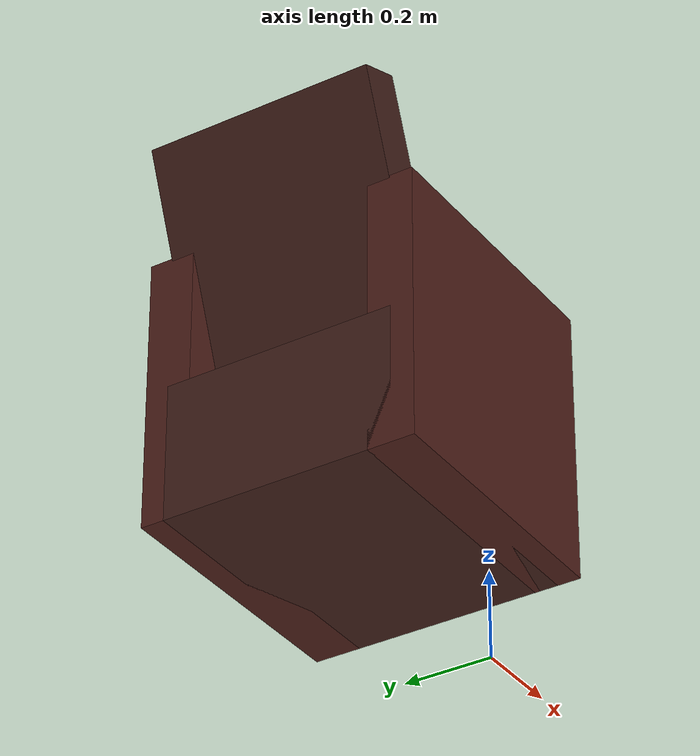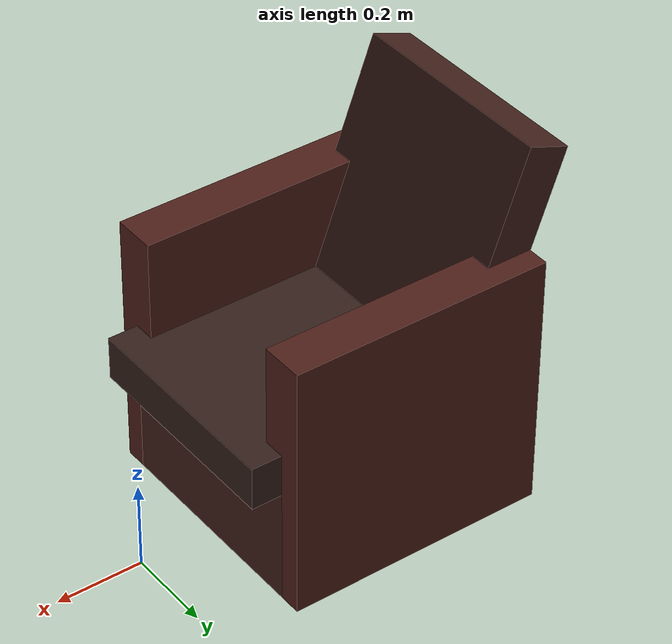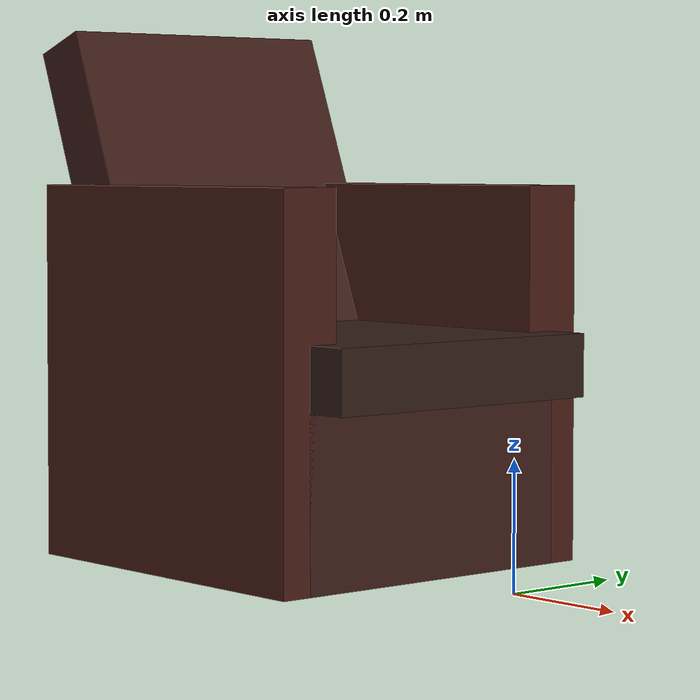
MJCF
<mujoco model="chair">
  <worldbody>
    <body name="chair" pos="-0.35 0 0.2" quat="1 0 0 0">
      <geom name="seat" type="box" pos="0 0 0.12" size=".25 .25 .05" mass="10." material="seat"/>
      <geom name="seat_base" type="box" pos="-0.12 0 -0.05" size=".30 .25 .15" mass="10." material="back"/>
      <geom name="back" type="box" pos="-0.35 0 0.35" size=".05 0.25 .3" mass="10." quat="0.984 0 -0.178 0" material="back"/>
      <geom name="chair_leg_1" type="box" pos="-0.12 0.25 0.1" size=".3 0.05 .3" mass="5." quat="1 0 0 0" material="legs"/>
      <geom name="chair_leg_2" type="box" pos="-0.12 -0.25 0.1" size=".3 0.05 .3" mass="5." quat="1 0 0 0" material="legs"/>
    </body>
  </worldbody>

  <asset>
    <material name="seat" rgba="0.2  0.12  0.1 1"/>
    <material name="back" rgba="0.25  0.12  0.1 1"/>
    <material name="legs" rgba="0.3  0.12  0.1 1"/>
  </asset>

  <keyframe>
    <key name="home"
    qpos="-0.66
   0.025
   0.8
   0.97
  -0.085
  -0.22
   0.027
   0.016
  -0.44
   0.28
  -0.4
   0.14
  -0.64
  -1.6
   0.0061
   0.31
  -0.028
   0.21
  -0.68
  -1.3
   0.16
  -0.14
   0.89
  -0.41
  -0.71
   0.97
  -0.5
   0.46"/>
  </keyframe>

</mujoco>
